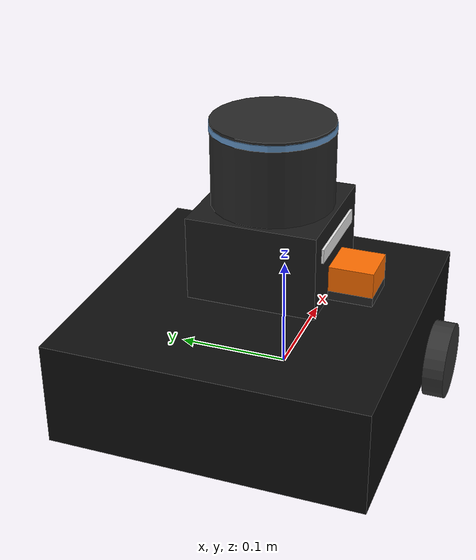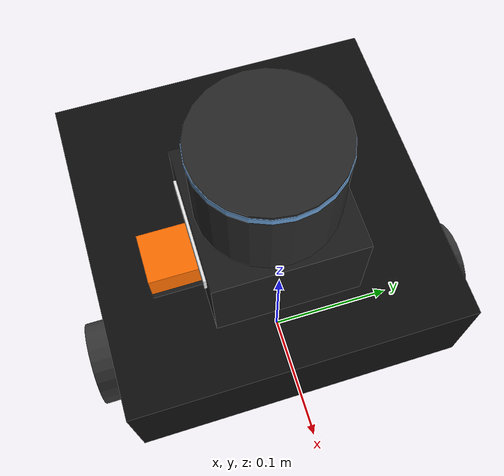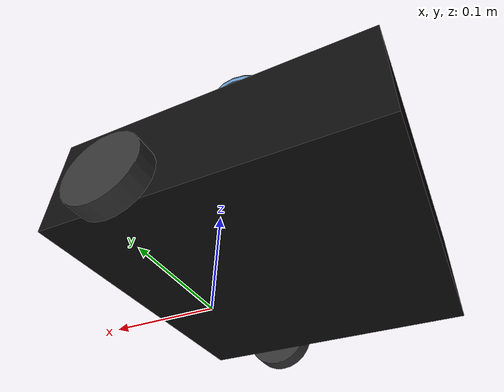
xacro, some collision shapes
<?xml version="1.0"?>
<robot xmlns:xacro="http://www.ros.org/wiki/xacro" name="custom_turtlebot_rkolio">

  <xacro:property name="wheel_radius"     value="0.033"/>
  <xacro:property name="wheel_width"      value="0.018"/>
  <xacro:property name="wheel_separation" value="0.287"/>

  <!-- ══════════════════════════════════════════════════════════════════════
       Base
       ══════════════════════════════════════════════════════════════════════ -->
  <link name="base_footprint"/>

  <link name="base_link">
    <visual>
      <origin xyz="-0.064 0 0" rpy="0 0 0"/>
      <geometry>
        <mesh filename="package://turtlebot3_description/meshes/bases/waffle_pi_base.stl" scale="0.001 0.001 0.001"/>
      </geometry>
      <material name="black">
        <color rgba="0.05 0.05 0.05 1.0"/>
      </material>
    </visual>
    <collision>
      <origin xyz="-0.064 0 0.048" rpy="0 0 0"/>
      <geometry><box size="0.265 0.265 0.089"/></geometry>
    </collision>
    <inertial>
      <origin xyz="-0.064 0 0.048" rpy="0 0 0"/>
      <mass value="1.3729096"/>
      <inertia ixx="4.2111447e-02" ixy="0" ixz="0"
               iyy="4.2111447e-02" iyz="0" izz="7.5254874e-02"/>
    </inertial>
  </link>

  <joint name="base_joint" type="fixed">
    <parent link="base_footprint"/>
    <child link="base_link"/>
    <origin xyz="0 0 0.010" rpy="0 0 0"/>
  </joint>

  <link name="wheel_left_link">
    <visual>
      <origin xyz="0 0 0" rpy="1.5708 0 0"/>
      <geometry><cylinder radius="${wheel_radius}" length="${wheel_width}"/></geometry>
      <material name="wheel_dark">
        <color rgba="0.2 0.2 0.2 1.0"/>
      </material>
    </visual>
    <collision>
      <origin xyz="0 0 0" rpy="1.5708 0 0"/>
      <geometry><cylinder radius="${wheel_radius}" length="${wheel_width}"/></geometry>
    </collision>
    <inertial>
      <mass value="0.0285"/>
      <inertia ixx="1.8158194e-03" ixy="0" ixz="0"
               iyy="3.2922126e-03" iyz="0" izz="1.8158194e-03"/>
    </inertial>
  </link>

  <joint name="wheel_left_joint" type="continuous">
    <parent link="base_link"/>
    <child link="wheel_left_link"/>
    <origin xyz="0 0.144 0.023" rpy="0 0 0"/>
    <axis xyz="0 1 0"/>
  </joint>

  <link name="wheel_right_link">
    <visual>
      <origin xyz="0 0 0" rpy="1.5708 0 0"/>
      <geometry><cylinder radius="${wheel_radius}" length="${wheel_width}"/></geometry>
      <material name="wheel_dark"/>
    </visual>
    <collision>
      <origin xyz="0 0 0" rpy="1.5708 0 0"/>
      <geometry><cylinder radius="${wheel_radius}" length="${wheel_width}"/></geometry>
    </collision>
    <inertial>
      <mass value="0.0285"/>
      <inertia ixx="1.8158194e-03" ixy="0" ixz="0"
               iyy="3.2922126e-03" iyz="0" izz="1.8158194e-03"/>
    </inertial>
  </link>

  <joint name="wheel_right_joint" type="continuous">
    <parent link="base_link"/>
    <child link="wheel_right_link"/>
    <origin xyz="0 -0.144 0.023" rpy="0 0 0"/>
    <axis xyz="0 1 0"/>
  </joint>

  <!-- Casters (fixed — non-driven) -->
  <link name="caster_back_right_link">
    <inertial><mass value="0.001"/><inertia ixx="1e-5" ixy="0" ixz="0" iyy="1e-5" iyz="0" izz="1e-5"/></inertial>
  </link>
  <joint name="caster_back_right_joint" type="fixed">
    <parent link="base_link"/>
    <child link="caster_back_right_link"/>
    <origin xyz="-0.177 -0.064 -0.004" rpy="0 0 0"/>
  </joint>

  <link name="caster_back_left_link">
    <inertial><mass value="0.001"/><inertia ixx="1e-5" ixy="0" ixz="0" iyy="1e-5" iyz="0" izz="1e-5"/></inertial>
  </link>
  <joint name="caster_back_left_joint" type="fixed">
    <parent link="base_link"/>
    <child link="caster_back_left_link"/>
    <origin xyz="-0.177 0.064 -0.004" rpy="0 0 0"/>
  </joint>

  <!-- Jetson AGX Orin housing (110×110×72 mm), flush on top of waffle plate -->
  <link name="jetson_housing_link">
    <visual>
      <origin xyz="0 0 0.036" rpy="0 0 0"/>
      <geometry><box size="0.11 0.11 0.072"/></geometry>
      <material name="jetson_black"><color rgba="0.1 0.1 0.1 1.0"/></material>
    </visual>
    <visual>
      <origin xyz="0 -0.0555 0.05" rpy="0 0 0"/>
      <geometry><box size="0.08 0.003 0.012"/></geometry>
      <material name="white_label"><color rgba="0.9 0.9 0.9 1.0"/></material>
    </visual>
    <collision>
      <origin xyz="0 0 0.036" rpy="0 0 0"/>
      <geometry><box size="0.11 0.11 0.072"/></geometry>
    </collision>
    <inertial>
      <mass value="0.7"/>
      <inertia ixx="0.0009" ixy="0" ixz="0" iyy="0.0009" iyz="0" izz="0.0014"/>
    </inertial>
  </link>

  <joint name="jetson_housing_joint" type="fixed">
    <parent link="base_link"/>
    <child link="jetson_housing_link"/>
    <origin xyz="-0.032 0 0.093" rpy="0 0 0"/>
  </joint>

  <!-- Pixhawk Cube Orange+ (orange) -->
  <link name="pixhawk_cube_link">
    <visual>
      <origin xyz="0 0 0.004" rpy="0 0 0"/>
      <geometry><box size="0.038 0.038 0.008"/></geometry>
      <material name="pixhawk_base_gray"><color rgba="0.15 0.15 0.15 1.0"/></material>
    </visual>
    <visual>
      <origin xyz="0 0 0.019" rpy="0 0 0"/>
      <geometry><box size="0.038 0.038 0.022"/></geometry>
      <material name="pixhawk_orange">
        <color rgba="1.0 0.43 0.0 1.0"/>
      </material>
    </visual>
    <inertial>
      <mass value="0.08"/>
      <inertia ixx="2e-5" ixy="0" ixz="0" iyy="2e-5" iyz="0" izz="2e-5"/>
    </inertial>
  </link>

  <!-- Pixhawk now sits BESIDE the Jetson, flush on the waffle plate -->
  <joint name="pixhawk_cube_joint" type="fixed">
    <parent link="base_link"/>
    <child link="pixhawk_cube_link"/>
    <origin xyz="-0.032 -0.074 0.093" rpy="0 0 0"/>
  </joint>

  <!-- IMU lives inside the Pixhawk Cube (matches real robot) -->
  <link name="imu_link">
    <inertial>
      <mass value="0.001"/>
      <inertia ixx="1e-7" ixy="0" ixz="0" iyy="1e-7" iyz="0" izz="1e-7"/>
    </inertial>
  </link>

  <joint name="imu_joint" type="fixed">
    <parent link="pixhawk_cube_link"/>
    <child link="imu_link"/>
    <origin xyz="0 0 0.015" rpy="0 0 0"/>
  </joint>

  <!-- Velodyne VLP-16 — directly on top of the Jetson housing -->
  <link name="velodyne">
    <visual>
      <origin xyz="0 0 0.0359" rpy="0 0 0"/>
      <geometry><cylinder radius="0.0515" length="0.0718"/></geometry>
      <material name="vlp_body"><color rgba="0.15 0.15 0.15 1.0"/></material>
    </visual>
    <visual>
      <origin xyz="0 0 0.067" rpy="0 0 0"/>
      <geometry><cylinder radius="0.052" length="0.005"/></geometry>
      <material name="vlp_ring"><color rgba="0.4 0.6 0.8 1.0"/></material>
    </visual>
    <inertial>
      <mass value="0.83"/>
      <inertia ixx="0.0003" ixy="0" ixz="0" iyy="0.0003" iyz="0" izz="0.0004"/>
    </inertial>
  </link>

  <joint name="velodyne_joint" type="fixed">
    <parent link="jetson_housing_link"/>
    <child link="velodyne"/>
    <origin xyz="0 0 0.072" rpy="0 0 0"/>
  </joint>

</robot>
